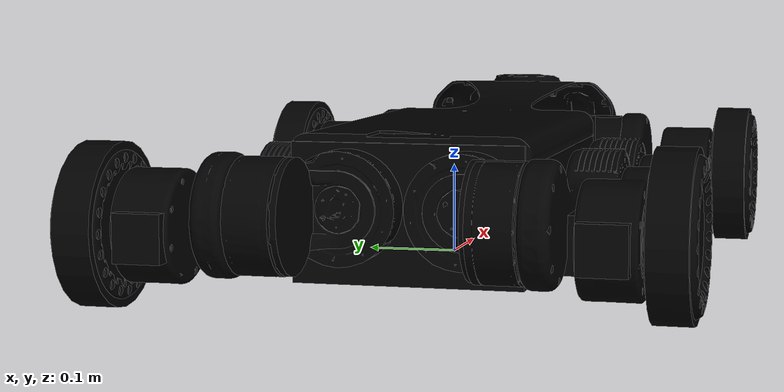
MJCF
<mujoco model="thunder">
  <compiler angle="radian" meshdir="../meshes/"/>

  <asset>
    <mesh name="base_link" file="base_link.STL"/>
    <mesh name="FR_hip" file="FR_hip.STL"/>
    <mesh name="FR_thigh" file="FR_thigh.STL"/>
    <mesh name="FR_calf" file="FR_calf.STL"/>
    <mesh name="FR_foot" file="FR_foot.STL"/>
    <mesh name="FL_hip" file="FL_hip.STL"/>
    <mesh name="FL_thigh" file="FL_thigh.STL"/>
    <mesh name="FL_calf" file="FL_calf.STL"/>
    <mesh name="FL_foot" file="FL_foot.STL"/>
    <mesh name="RR_hip" file="RR_hip.STL"/>
    <mesh name="RR_thigh" file="RR_thigh.STL"/>
    <mesh name="RR_calf" file="RR_calf.STL"/>
    <mesh name="RR_foot" file="RR_foot.STL"/>
    <mesh name="RL_hip" file="RL_hip.STL"/>
    <mesh name="RL_thigh" file="RL_thigh.STL"/>
    <mesh name="RL_calf" file="RL_calf.STL"/>
    <mesh name="RL_foot" file="RL_foot.STL"/>
  </asset>

  <worldbody>
    <geom type="mesh" contype="0" conaffinity="0" group="1" density="0" rgba="0 0 0 1" mesh="base_link"/>
    <geom size="0.225 0.125 0.075" pos="0.021228 0.001573 0.066239" type="box" rgba="0 0 0 1"/>
    <body name="FR_hip" pos="0.25292 -0.065 0.075">
      <inertial pos="0.070843 -0.050619 -0.00078558" quat="0.57521 0.569776 0.417105 0.412932" mass="1.6657" diaginertia="0.00424084 0.00325492 0.00243424"/>
      <joint name="FR_hip_joint" pos="0 0 0" axis="-1 0 0" range="-0.4 0.4" actuatorfrcrange="-100 100"/>
      <geom type="mesh" contype="0" conaffinity="0" group="1" density="0" rgba="0 0 0 1" mesh="FR_hip"/>
      <geom size="0.06 0.03" pos="0.070843 -0.055619 -0.00078558" quat="0.707105 0.707108 0 0" type="cylinder" rgba="0 0 0 1"/>
      <body name="FR_thigh" pos="0.078 -0.0795 0">
        <inertial pos="-0.1947 -0.027164 -0.022587" quat="0.512214 0.453419 0.486579 0.543405" mass="2.40385" diaginertia="0.0281689 0.0261953 0.00330078"/>
        <joint name="FR_thigh_joint" pos="0 0 0" axis="0 1 0" range="-3.14 0" actuatorfrcrange="-100 100"/>
        <geom type="mesh" contype="0" conaffinity="0" group="1" density="0" rgba="0 0 0 1" mesh="FR_thigh"/>
        <geom size="0.1 0.02 0.03" pos="-0.2047 -0.027164 -0.022587" type="box" rgba="0 0 0 1"/>
        <body name="FR_calf" pos="-0.24825 -0.0555 -0.0295">
          <inertial pos="0.17734 -0.029035 0.012098" quat="0.528067 0.497666 0.467261 0.505114" mass="1.89382" diaginertia="0.024511 0.0234843 0.00220268"/>
          <joint name="FR_calf_joint" pos="0 0 0" axis="0 1 0" range="0 3.14" actuatorfrcrange="-100 100"/>
          <geom type="mesh" contype="0" conaffinity="0" group="1" density="0" rgba="0 0 0 1" mesh="FR_calf"/>
          <geom size="0.14 0.025 0.025" pos="0.17734 -0.029035 0.012098" type="box" rgba="0 0 0 1"/>
          <body name="FR_foot" pos="0.24942 -0.061 0.017">
            <inertial pos="-5.9758e-09 -0.029314 -2.9377e-09" quat="0.707107 0 0 0.707107" mass="0.594532" diaginertia="0.002168 0.001179 0.001179"/>
            <joint name="FR_foot_joint" pos="0 0 0" axis="0 -1 0"/>
            <geom type="mesh" contype="0" conaffinity="0" group="1" density="0" rgba="0 0 0 1" mesh="FR_foot"/>
            <geom size="0.085 0.02" pos="0 -0.029314 0" quat="0.707105 0.707108 0 0" type="cylinder" rgba="0 0 0 1"/>
          </body>
        </body>
      </body>
    </body>
    <body name="FL_hip" pos="0.25292 0.065 0.075">
      <inertial pos="0.070843 0.050619 0.00078558" quat="0.417105 0.412932 0.57521 0.569776" mass="1.6657" diaginertia="0.00424084 0.00325492 0.00243424"/>
      <joint name="FL_hip_joint" pos="0 0 0" axis="-1 0 0" range="-0.4 0.4" actuatorfrcrange="-100 100"/>
      <geom type="mesh" contype="0" conaffinity="0" group="1" density="0" rgba="0 0 0 1" mesh="FL_hip"/>
      <geom size="0.06 0.03" pos="0.070843 0.055619 0.00078558" quat="0.707105 0.707108 0 0" type="cylinder" rgba="0 0 0 1"/>
      <body name="FL_thigh" pos="0.078 0.0795 0">
        <inertial pos="-0.19436 0.027164 -0.022887" quat="0.540965 0.488342 0.450272 0.515882" mass="2.40385" diaginertia="0.0280908 0.0260632 0.00335803"/>
        <joint name="FL_thigh_joint" pos="0 0 0" axis="0 -1 0" range="0 3.14" actuatorfrcrange="-100 100"/>
        <geom type="mesh" contype="0" conaffinity="0" group="1" density="0" rgba="0 0 0 1" mesh="FL_thigh"/>
        <geom size="0.1 0.02 0.03" pos="-0.20436 0.027164 -0.022887" type="box" rgba="0 0 0 1"/>
        <body name="FL_calf" pos="-0.24825 0.0555 -0.0295">
          <inertial pos="0.1774 0.029035 0.0121" quat="0.505154 0.467265 0.497687 0.528006" mass="1.89382" diaginertia="0.0245259 0.0234992 0.0022029"/>
          <joint name="FL_calf_joint" pos="0 0 0" axis="0 -1 0" range="-3.14 0" actuatorfrcrange="-100 100"/>
          <geom type="mesh" contype="0" conaffinity="0" group="1" density="0" rgba="0 0 0 1" mesh="FL_calf"/>
          <geom size="0.14 0.025 0.025" pos="0.1774 0.029035 0.0121" type="box" rgba="0 0 0 1"/>
          <body name="FL_foot" pos="0.24942 0.061 0.017">
            <inertial pos="5.9758e-09 0.029314 -2.9377e-09" quat="0.707107 0 0 0.707107" mass="0.594532" diaginertia="0.002168 0.001179 0.001179"/>
            <joint name="FL_foot_joint" pos="0 0 0" axis="0 1 0"/>
            <geom type="mesh" contype="0" conaffinity="0" group="1" density="0" rgba="0 0 0 1" mesh="FL_foot"/>
            <geom size="0.085 0.02" pos="0 0.029314 0" quat="0.707105 0.707108 0 0" type="cylinder" rgba="0 0 0 1"/>
          </body>
        </body>
      </body>
    </body>
    <body name="RR_hip" pos="-0.22608 -0.065 0.075">
      <inertial pos="-0.070843 -0.050619 0.00078559" quat="0.412932 0.417105 0.569776 0.57521" mass="1.6657" diaginertia="0.00424084 0.00325492 0.00243424"/>
      <joint name="RR_hip_joint" pos="0 0 0" axis="1 0 0" range="-0.4 0.4" actuatorfrcrange="-100 100"/>
      <geom type="mesh" contype="0" conaffinity="0" group="1" density="0" rgba="0 0 0 1" mesh="RR_hip"/>
      <geom size="0.06 0.03" pos="-0.070843 -0.055619 0.00078559" quat="0.707105 0.707108 0 0" type="cylinder" rgba="0 0 0 1"/>
      <body name="RR_thigh" pos="-0.078 -0.0795 0">
        <inertial pos="0.19437 -0.027164 -0.025237" quat="0.483974 0.545505 0.516251 0.449087" mass="2.40385" diaginertia="0.0281689 0.026195 0.00330109"/>
        <joint name="RR_thigh_joint" pos="0 0 0" axis="0 1 0" range="0 3.14" actuatorfrcrange="-100 100"/>
        <geom type="mesh" contype="0" conaffinity="0" group="1" density="0" rgba="0 0 0 1" mesh="RR_thigh"/>
        <geom size="0.125 0.025 0.03" pos="0.16437 -0.027164 -0.025237" type="box" rgba="0 0 0 1"/>
        <body name="RR_calf" pos="0.24825 -0.0555 -0.0295">
          <inertial pos="-0.17705 -0.029035 0.016422" quat="0.460779 0.511211 0.533638 0.491504" mass="1.89382" diaginertia="0.0245258 0.023499 0.0022032"/>
          <joint name="RR_calf_joint" pos="0 0 0" axis="0 1 0" range="-3.14 0" actuatorfrcrange="-100 100"/>
          <geom type="mesh" contype="0" conaffinity="0" group="1" density="0" rgba="0 0 0 1" mesh="RR_calf"/>
          <geom size="0.14 0.025 0.025" pos="-0.17705 -0.029035 0.016422" type="box" rgba="0 0 0 1"/>
          <body name="RR_foot" pos="-0.24893 -0.061 0.023077">
            <inertial pos="-5.9758e-09 -0.029314 -2.9377e-09" quat="0.707107 0 0 0.707107" mass="0.594532" diaginertia="0.002168 0.001179 0.001179"/>
            <joint name="RR_foot_joint" pos="0 0 0" axis="0 -1 0"/>
            <geom type="mesh" contype="0" conaffinity="0" group="1" density="0" rgba="0 0 0 1" mesh="RR_foot"/>
            <geom size="0.085 0.02" pos="0 -0.029314 0" quat="0.707105 0.707108 0 0" type="cylinder" rgba="0 0 0 1"/>
          </body>
        </body>
      </body>
    </body>
    <body name="RL_hip" pos="-0.22608 0.065 0.075">
      <inertial pos="-0.070843 0.050619 -0.00078559" quat="0.569776 0.57521 0.412932 0.417105" mass="1.6657" diaginertia="0.00424084 0.00325492 0.00243424"/>
      <joint name="RL_hip_joint" pos="0 0 0" axis="1 0 0" range="-0.4 0.4" actuatorfrcrange="-100 100"/>
      <geom type="mesh" contype="0" conaffinity="0" group="1" density="0" rgba="0 0 0 1" mesh="RL_hip"/>
      <geom size="0.06 0.03" pos="-0.070843 0.055619 -0.00078559" quat="0.707105 0.707108 0 0" type="cylinder" rgba="0 0 0 1"/>
      <body name="RL_thigh" pos="-0.078 0.0795 0">
        <inertial pos="0.1947 0.027164 -0.022587" quat="0.453419 0.512214 0.543405 0.486579" mass="2.40385" diaginertia="0.0281689 0.0261953 0.00330078"/>
        <joint name="RL_thigh_joint" pos="0 0 0" axis="0 -1 0" range="-3.14 0" actuatorfrcrange="-100 100"/>
        <geom type="mesh" contype="0" conaffinity="0" group="1" density="0" rgba="0 0 0 1" mesh="RL_thigh"/>
        <geom size="0.125 0.025 0.03" pos="0.1647 0.027164 -0.022587" type="box" rgba="0 0 0 1"/>
        <body name="RL_calf" pos="0.24825 0.0555 -0.0295">
          <inertial pos="-0.1774 0.029035 0.012082" quat="0.494981 0.530898 0.502076 0.470171" mass="1.89382" diaginertia="0.0245258 0.0234991 0.00220312"/>
          <joint name="RL_calf_joint" pos="0 0 0" axis="0 -1 0" range="0 3.14" actuatorfrcrange="-100 100"/>
          <geom type="mesh" contype="0" conaffinity="0" group="1" density="0" rgba="0 0 0 1" mesh="RL_calf"/>
          <geom size="0.14 0.025 0.025" pos="-0.1774 0.029035 0.012082" type="box" rgba="0 0 0 1"/>
          <body name="RL_foot" pos="-0.24942 0.061 0.017">
            <inertial pos="5.9758e-09 0.029314 -2.9377e-09" quat="0.707107 0 0 0.707107" mass="0.594532" diaginertia="0.002168 0.001179 0.001179"/>
            <joint name="RL_foot_joint" pos="0 0 0" axis="0 1 0"/>
            <geom type="mesh" contype="0" conaffinity="0" group="1" density="0" rgba="0 0 0 1" mesh="RL_foot"/>
            <geom size="0.085 0.02" pos="0 0.029314 0" quat="0.707105 0.707108 0 0" type="cylinder" rgba="0 0 0 1"/>
          </body>
        </body>
      </body>
    </body>
  </worldbody>
</mujoco>
